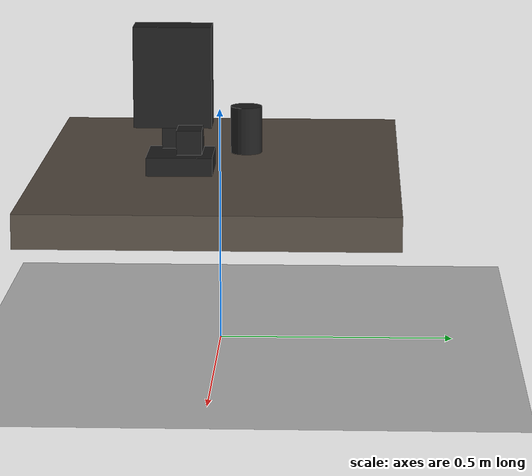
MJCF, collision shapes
<mujoco model="ycb_random_scene_0025">
  <compiler angle="radian" autolimits="true"/>

  <option timestep="0.002" gravity="0 0 -9.81" integrator="RK4"/>
  <visual>
    <global offwidth="1280" offheight="900"/>
  </visual>

  <default>
    <joint damping="0.01"/>
    <geom condim="4" friction="1.05 0.006 0.0001" solref="0.01 1" solimp="0.9 0.95 0.001"/>
  </default>

  <asset>
    <texture name="grid" type="2d" builtin="checker" width="512" height="512" rgb1="0.82 0.82 0.82" rgb2="0.68 0.68 0.68"/>
    <material name="floor_mat" texture="grid" texrepeat="2 2" reflectance="0.15"/>
    <material name="table_mat" rgba="0.35 0.31 0.27 1"/>
    <mesh name="mesh_005_tomato_soup_can" file="../../objects/ycb/005_tomato_soup_can/google_16k/textured.obj" scale="1.000000000 1.000000000 1.000000000"/>
    <texture name="tex_005_tomato_soup_can" type="2d" file="../../objects/ycb/005_tomato_soup_can/google_16k/texture_map.png"/>
    <material name="mat_005_tomato_soup_can" texture="tex_005_tomato_soup_can" specular="0.25" shininess="0.35"/>
    <mesh name="mesh_008_pudding_box" file="../../objects/ycb/008_pudding_box/google_16k/textured.obj" scale="1.000000000 1.000000000 1.000000000"/>
    <texture name="tex_008_pudding_box" type="2d" file="../../objects/ycb/008_pudding_box/google_16k/texture_map.png"/>
    <material name="mat_008_pudding_box" texture="tex_008_pudding_box" specular="0.25" shininess="0.35"/>
    <mesh name="mesh_010_potted_meat_can" file="../../objects/ycb/010_potted_meat_can/google_16k/textured.obj" scale="1.000000000 1.000000000 1.000000000"/>
    <texture name="tex_010_potted_meat_can" type="2d" file="../../objects/ycb/010_potted_meat_can/google_16k/texture_map.png"/>
    <material name="mat_010_potted_meat_can" texture="tex_010_potted_meat_can" specular="0.25" shininess="0.35"/>
    <mesh name="mesh_007_tuna_fish_can" file="../../objects/ycb/007_tuna_fish_can/google_16k/textured.obj" scale="1.000000000 1.000000000 1.000000000"/>
    <texture name="tex_007_tuna_fish_can" type="2d" file="../../objects/ycb/007_tuna_fish_can/google_16k/texture_map.png"/>
    <material name="mat_007_tuna_fish_can" texture="tex_007_tuna_fish_can" specular="0.25" shininess="0.35"/>
    <mesh name="mesh_003_cracker_box" file="../../objects/ycb/003_cracker_box/google_16k/textured.obj" scale="1.000000000 1.000000000 1.000000000"/>
    <texture name="tex_003_cracker_box" type="2d" file="../../objects/ycb/003_cracker_box/google_16k/texture_map.png"/>
    <material name="mat_003_cracker_box" texture="tex_003_cracker_box" specular="0.25" shininess="0.35"/>
    <mesh name="mesh_061_foam_brick" file="../../objects/ycb/061_foam_brick/google_16k/textured.obj" scale="1.000000000 1.000000000 1.000000000"/>
    <texture name="tex_061_foam_brick" type="2d" file="../../objects/ycb/061_foam_brick/google_16k/texture_map.png"/>
    <material name="mat_061_foam_brick" texture="tex_061_foam_brick" specular="0.25" shininess="0.35"/>
  </asset>

  <worldbody>
    <light name="key_light" pos="0.25 -0.55 1.2" dir="-0.2 0.45 -1"/>
    <camera name="overview" mode="targetbody" target="table" pos="0.82 -0.92 1.08" fovy="62"/>
    <camera name="topdown" mode="targetbody" target="table" pos="0.00 0.00 1.45" fovy="54"/>
    <camera name="front" mode="targetbody" target="table" pos="0.00 -1.20 0.72" fovy="55"/>
    <geom name="floor" type="plane" size="1.2 1.2 0.02" material="floor_mat"/>

    <body name="table" pos="0 0 0.35">
      <geom name="table_top" type="box" size="0.50 0.38 0.035" material="table_mat"/>
    </body>

    <body name="obj_005_tomato_soup_can" pos="-0.109160 0.051400 0.436928">
      <freejoint/>
      <geom name="obj_005_tomato_soup_can_geom" type="cylinder" size="0.033913 0.050928" mass="0.349000" rgba="0.12 0.12 0.12 0.0" group="3"/>
      <geom name="obj_005_tomato_soup_can_visual" type="mesh" mesh="mesh_005_tomato_soup_can" material="mat_005_tomato_soup_can" pos="0.009169 -0.084017 -0.051006" quat="1.00000000 0.00000000 0.00000000 0.00000000" contype="0" conaffinity="0" group="2"/>
    </body>

    <body name="obj_008_pudding_box" pos="0.084430 -0.077480 0.405444">
      <freejoint/>
      <geom name="obj_008_pudding_box_geom" type="box" size="0.064378 0.068969 0.019444" mass="0.187000" rgba="0.12 0.12 0.12 0.0" group="3"/>
      <geom name="obj_008_pudding_box_visual" type="mesh" mesh="mesh_008_pudding_box" material="mat_008_pudding_box" pos="0.019123 -0.000505 -0.018948" quat="0.70710678 0.00000000 0.00000000 0.70710678" contype="0" conaffinity="0" group="2"/>
    </body>

    <body name="obj_010_potted_meat_can" pos="-0.003600 -0.089140 0.427772">
      <freejoint/>
      <geom name="obj_010_potted_meat_can_geom" type="box" size="0.051042 0.030052 0.041771" mass="0.370000" rgba="0.12 0.12 0.12 0.0" group="3"/>
      <geom name="obj_010_potted_meat_can_visual" type="mesh" mesh="mesh_010_potted_meat_can" material="mat_010_potted_meat_can" pos="0.032785 0.026552 -0.038583" quat="1.00000000 0.00000000 0.00000000 0.00000000" contype="0" conaffinity="0" group="2"/>
    </body>

    <body name="obj_007_tuna_fish_can" pos="-0.006360 -0.071980 0.487312">
      <freejoint/>
      <geom name="obj_007_tuna_fish_can_geom" type="cylinder" size="0.042775 0.016769" mass="0.171000" rgba="0.12 0.12 0.12 0.0" group="3"/>
      <geom name="obj_007_tuna_fish_can_visual" type="mesh" mesh="mesh_007_tuna_fish_can" material="mat_007_tuna_fish_can" pos="0.026049 0.022132 -0.013551" quat="1.00000000 0.00000000 0.00000000 0.00000000" contype="0" conaffinity="0" group="2"/>
    </body>

    <body name="obj_003_cracker_box" pos="0.022640 -0.096280 0.577261">
      <freejoint/>
      <geom name="obj_003_cracker_box_geom" type="box" size="0.035900 0.082018 0.106718" mass="0.411000" rgba="0.12 0.12 0.12 0.0" group="3"/>
      <geom name="obj_003_cracker_box_visual" type="mesh" mesh="mesh_003_cracker_box" material="mat_003_cracker_box" pos="0.012885 0.014142 -0.103475" quat="1.00000000 0.00000000 0.00000000 0.00000000" contype="0" conaffinity="0" group="2"/>
    </body>

    <body name="obj_061_foam_brick" pos="0.082280 -0.057900 0.451485">
      <freejoint/>
      <geom name="obj_061_foam_brick_geom" type="box" size="0.038937 0.026280 0.025597" mass="0.028000" rgba="0.12 0.12 0.12 0.0" group="3"/>
      <geom name="obj_061_foam_brick_visual" type="mesh" mesh="mesh_061_foam_brick" material="mat_061_foam_brick" pos="-0.017200 -0.018261 -0.025251" quat="0.70710678 0.00000000 0.00000000 -0.70710678" contype="0" conaffinity="0" group="2"/>
    </body>

  </worldbody>
</mujoco>
